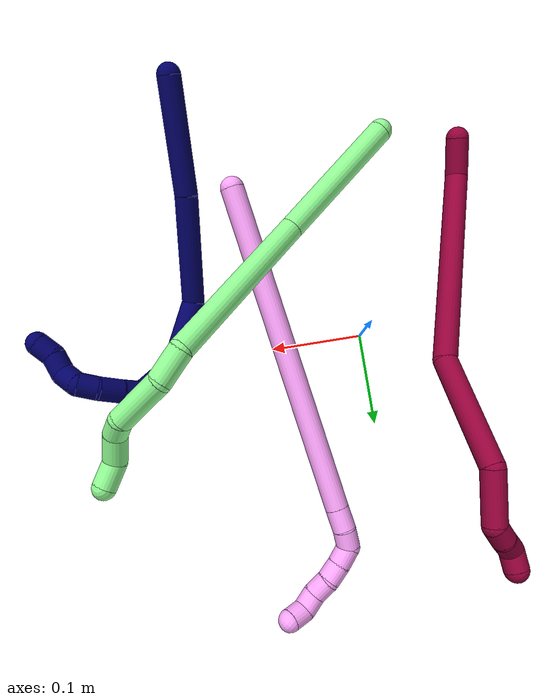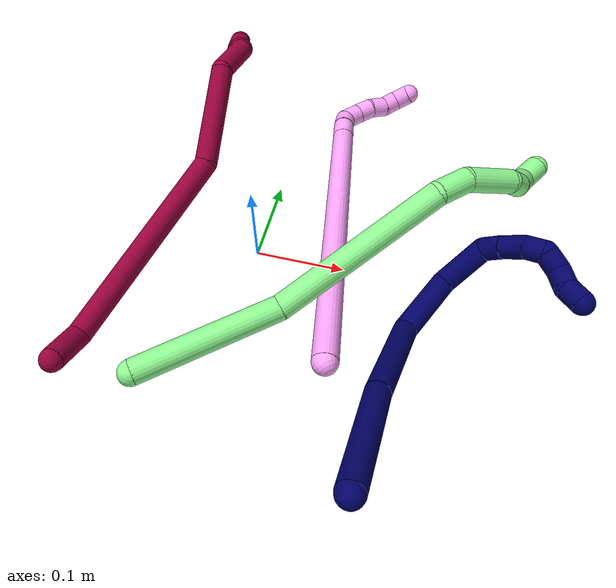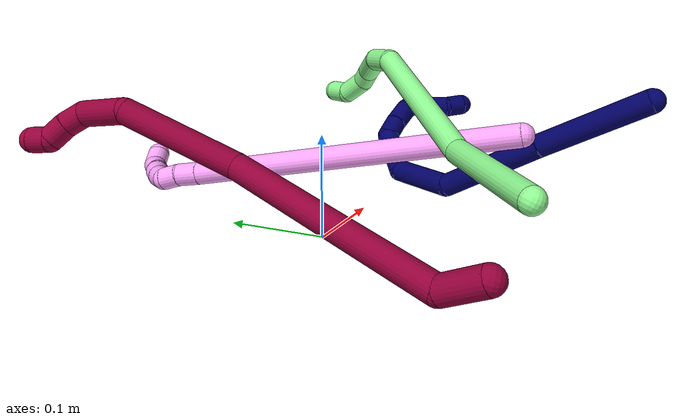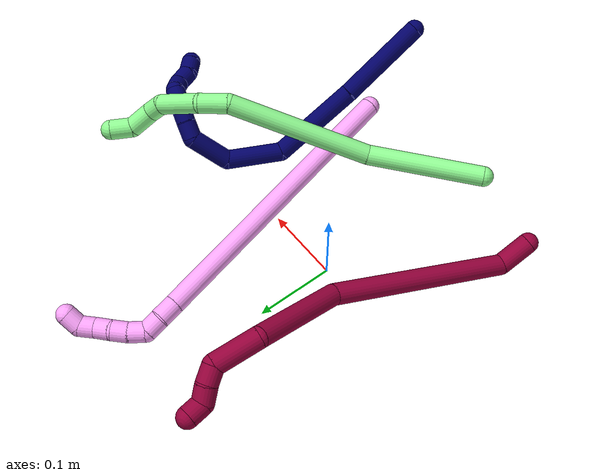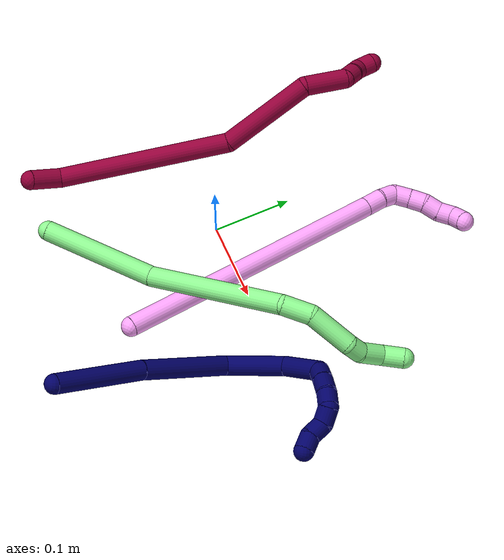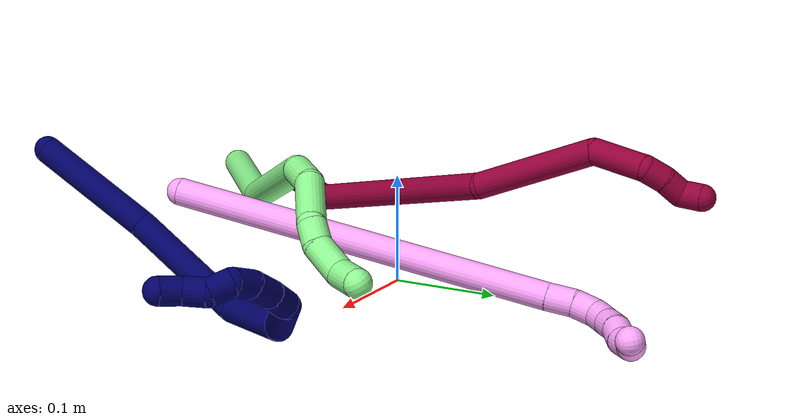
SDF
<sdf version="1.7">
 <world name="default">
  <model name="4">
   <static>0</static>
   <link name="4">
    <collision name="collision-cylinder-e_1_1_4">
     <pose>-0.055426 0.083346 0.145244 -0.520955 -0.319634 0.085873</pose>
     <geometry><cylinder><radius>0.0125</radius><length>0.352785</length></cylinder></geometry>
     <surface>
      <friction><ode><mu>1.16</mu><mu2>1.16</mu2><slip1>0</slip1><slip2>0</slip2></ode></friction>
      <contact><ode><kp>1e+06</kp><kd>1</kd><max_vel>0</max_vel><min_depth>0.001</min_depth></ode></contact>
     </surface>
    </collision>
    <visual name="visual-cylinder-e_1_1_4">
     <pose>-0.055426 0.083346 0.145244 -0.520955 -0.319634 0.085873</pose>
     <geometry><cylinder><radius>0.0125</radius><length>0.352785</length></cylinder></geometry>
     <material><ambient>1 0.65098 0.996078 1</ambient></material>
    </visual>
    <collision name="collision-cylinder-e_2_4_5">
     <pose>-0.114283 0.172368 0.300697 -0.507495 -0.285699 0.074566</pose>
     <geometry><cylinder><radius>0.0125</radius><length>0.024349</length></cylinder></geometry>
     <surface>
      <friction><ode><mu>1.16</mu><mu2>1.16</mu2><slip1>0</slip1><slip2>0</slip2></ode></friction>
      <contact><ode><kp>1e+06</kp><kd>1</kd><max_vel>0</max_vel><min_depth>0.001</min_depth></ode></contact>
     </surface>
    </collision>
    <visual name="visual-cylinder-e_2_4_5">
     <pose>-0.114283 0.172368 0.300697 -0.507495 -0.285699 0.074566</pose>
     <geometry><cylinder><radius>0.0125</radius><length>0.024349</length></cylinder></geometry>
     <material><ambient>1 0.65098 0.996078 1</ambient></material>
    </visual>
    <collision name="collision-cylinder-e_3_5_6">
     <pose>-0.122227 0.183393 0.318552 -0.610331 -0.45049 0.144106</pose>
     <geometry><cylinder><radius>0.0125</radius><length>0.02073</length></cylinder></geometry>
     <surface>
      <friction><ode><mu>1.16</mu><mu2>1.16</mu2><slip1>0</slip1><slip2>0</slip2></ode></friction>
      <contact><ode><kp>1e+06</kp><kd>1</kd><max_vel>0</max_vel><min_depth>0.001</min_depth></ode></contact>
     </surface>
    </collision>
    <visual name="visual-cylinder-e_3_5_6">
     <pose>-0.122227 0.183393 0.318552 -0.610331 -0.45049 0.144106</pose>
     <geometry><cylinder><radius>0.0125</radius><length>0.02073</length></cylinder></geometry>
     <material><ambient>1 0.65098 0.996078 1</ambient></material>
    </visual>
    <collision name="collision-cylinder-e_4_6_7">
     <pose>-0.128233 0.199002 0.328495 -1.35065 -0.141028 0.113024</pose>
     <geometry><cylinder><radius>0.0125</radius><length>0.021241</length></cylinder></geometry>
     <surface>
      <friction><ode><mu>1.16</mu><mu2>1.16</mu2><slip1>0</slip1><slip2>0</slip2></ode></friction>
      <contact><ode><kp>1e+06</kp><kd>1</kd><max_vel>0</max_vel><min_depth>0.001</min_depth></ode></contact>
     </surface>
    </collision>
    <visual name="visual-cylinder-e_4_6_7">
     <pose>-0.128233 0.199002 0.328495 -1.35065 -0.141028 0.113024</pose>
     <geometry><cylinder><radius>0.0125</radius><length>0.021241</length></cylinder></geometry>
     <material><ambient>1 0.65098 0.996078 1</ambient></material>
    </visual>
    <collision name="collision-cylinder-e_5_7_8">
     <pose>-0.129752 0.21929 0.332004 -1.45047 -0.002544 0.002255</pose>
     <geometry><cylinder><radius>0.0125</radius><length>0.020198</length></cylinder></geometry>
     <surface>
      <friction><ode><mu>1.16</mu><mu2>1.16</mu2><slip1>0</slip1><slip2>0</slip2></ode></friction>
      <contact><ode><kp>1e+06</kp><kd>1</kd><max_vel>0</max_vel><min_depth>0.001</min_depth></ode></contact>
     </surface>
    </collision>
    <visual name="visual-cylinder-e_5_7_8">
     <pose>-0.129752 0.21929 0.332004 -1.45047 -0.002544 0.002255</pose>
     <geometry><cylinder><radius>0.0125</radius><length>0.020198</length></cylinder></geometry>
     <material><ambient>1 0.65098 0.996078 1</ambient></material>
    </visual>
    <collision name="collision-cylinder-e_6_8_9">
     <pose>-0.131957 0.239368 0.332504 -1.64154 -0.212978 0.228474</pose>
     <geometry><cylinder><radius>0.0125</radius><length>0.02062</length></cylinder></geometry>
     <surface>
      <friction><ode><mu>1.16</mu><mu2>1.16</mu2><slip1>0</slip1><slip2>0</slip2></ode></friction>
      <contact><ode><kp>1e+06</kp><kd>1</kd><max_vel>0</max_vel><min_depth>0.001</min_depth></ode></contact>
     </surface>
    </collision>
    <visual name="visual-cylinder-e_6_8_9">
     <pose>-0.131957 0.239368 0.332504 -1.64154 -0.212978 0.228474</pose>
     <geometry><cylinder><radius>0.0125</radius><length>0.02062</length></cylinder></geometry>
     <material><ambient>1 0.65098 0.996078 1</ambient></material>
    </visual>
    <collision name="collision-cylinder-e_7_9_10">
     <pose>-0.133992 0.259345 0.333253 -1.4246 0.014391 -0.012428</pose>
     <geometry><cylinder><radius>0.0125</radius><length>0.020067</length></cylinder></geometry>
     <surface>
      <friction><ode><mu>1.16</mu><mu2>1.16</mu2><slip1>0</slip1><slip2>0</slip2></ode></friction>
      <contact><ode><kp>1e+06</kp><kd>1</kd><max_vel>0</max_vel><min_depth>0.001</min_depth></ode></contact>
     </surface>
    </collision>
    <visual name="visual-cylinder-e_7_9_10">
     <pose>-0.133992 0.259345 0.333253 -1.4246 0.014391 -0.012428</pose>
     <geometry><cylinder><radius>0.0125</radius><length>0.020067</length></cylinder></geometry>
     <material><ambient>1 0.65098 0.996078 1</ambient></material>
    </visual>
    <collision name="collision-cylinder-e_8_10_2">
     <pose>-0.128511 0.277497 0.332729 -1.80757 0.562591 -0.703433</pose>
     <geometry><cylinder><radius>0.0125</radius><length>0.020008</length></cylinder></geometry>
     <surface>
      <friction><ode><mu>1.16</mu><mu2>1.16</mu2><slip1>0</slip1><slip2>0</slip2></ode></friction>
      <contact><ode><kp>1e+06</kp><kd>1</kd><max_vel>0</max_vel><min_depth>0.001</min_depth></ode></contact>
     </surface>
    </collision>
    <visual name="visual-cylinder-e_8_10_2">
     <pose>-0.128511 0.277497 0.332729 -1.80757 0.562591 -0.703433</pose>
     <geometry><cylinder><radius>0.0125</radius><length>0.020008</length></cylinder></geometry>
     <material><ambient>1 0.65098 0.996078 1</ambient></material>
    </visual>
    <collision name="collision-sphere-2">
     <pose>-0.123175 0.285723 0.330744 0 -0 0</pose>
     <geometry><sphere><radius>0.0125</radius></sphere></geometry>
     <surface>
      <friction><ode><mu>1.16</mu><mu2>1.16</mu2><slip1>0</slip1><slip2>0</slip2></ode></friction>
      <contact><ode><kp>1e+06</kp><kd>1</kd><max_vel>0</max_vel><min_depth>0.001</min_depth></ode></contact>
     </surface>
    </collision>
    <visual name="visual-sphere-2">
     <pose>-0.123175 0.285723 0.330744 0 -0 0</pose>
     <geometry><sphere><radius>0.0125</radius></sphere></geometry>
     <material><ambient>1 0.65098 0.996078 1</ambient></material>
    </visual>
    <collision name="collision-sphere-10">
     <pose>-0.133847 0.269271 0.334714 0 -0 0</pose>
     <geometry><sphere><radius>0.0125</radius></sphere></geometry>
     <surface>
      <friction><ode><mu>1.16</mu><mu2>1.16</mu2><slip1>0</slip1><slip2>0</slip2></ode></friction>
      <contact><ode><kp>1e+06</kp><kd>1</kd><max_vel>0</max_vel><min_depth>0.001</min_depth></ode></contact>
     </surface>
    </collision>
    <visual name="visual-sphere-10">
     <pose>-0.133847 0.269271 0.334714 0 -0 0</pose>
     <geometry><sphere><radius>0.0125</radius></sphere></geometry>
     <material><ambient>1 0.65098 0.996078 1</ambient></material>
    </visual>
    <collision name="collision-sphere-9">
     <pose>-0.134136 0.24942 0.331791 0 -0 0</pose>
     <geometry><sphere><radius>0.0125</radius></sphere></geometry>
     <surface>
      <friction><ode><mu>1.16</mu><mu2>1.16</mu2><slip1>0</slip1><slip2>0</slip2></ode></friction>
      <contact><ode><kp>1e+06</kp><kd>1</kd><max_vel>0</max_vel><min_depth>0.001</min_depth></ode></contact>
     </surface>
    </collision>
    <visual name="visual-sphere-9">
     <pose>-0.134136 0.24942 0.331791 0 -0 0</pose>
     <geometry><sphere><radius>0.0125</radius></sphere></geometry>
     <material><ambient>1 0.65098 0.996078 1</ambient></material>
    </visual>
    <collision name="collision-sphere-4">
     <pose>-0.110852 0.166691 0.290488 0 -0 0</pose>
     <geometry><sphere><radius>0.0125</radius></sphere></geometry>
     <surface>
      <friction><ode><mu>1.16</mu><mu2>1.16</mu2><slip1>0</slip1><slip2>0</slip2></ode></friction>
      <contact><ode><kp>1e+06</kp><kd>1</kd><max_vel>0</max_vel><min_depth>0.001</min_depth></ode></contact>
     </surface>
    </collision>
    <visual name="visual-sphere-4">
     <pose>-0.110852 0.166691 0.290488 0 -0 0</pose>
     <geometry><sphere><radius>0.0125</radius></sphere></geometry>
     <material><ambient>1 0.65098 0.996078 1</ambient></material>
    </visual>
    <collision name="collision-sphere-1">
     <geometry><sphere><radius>0.0125</radius></sphere></geometry>
     <surface>
      <friction><ode><mu>1.16</mu><mu2>1.16</mu2><slip1>0</slip1><slip2>0</slip2></ode></friction>
      <contact><ode><kp>1e+06</kp><kd>1</kd><max_vel>0</max_vel><min_depth>0.001</min_depth></ode></contact>
     </surface>
    </collision>
    <visual name="visual-sphere-1">
     <geometry><sphere><radius>0.0125</radius></sphere></geometry>
     <material><ambient>1 0.65098 0.996078 1</ambient></material>
    </visual>
    <collision name="collision-sphere-8">
     <pose>-0.129778 0.229316 0.333216 0 -0 0</pose>
     <geometry><sphere><radius>0.0125</radius></sphere></geometry>
     <surface>
      <friction><ode><mu>1.16</mu><mu2>1.16</mu2><slip1>0</slip1><slip2>0</slip2></ode></friction>
      <contact><ode><kp>1e+06</kp><kd>1</kd><max_vel>0</max_vel><min_depth>0.001</min_depth></ode></contact>
     </surface>
    </collision>
    <visual name="visual-sphere-8">
     <pose>-0.129778 0.229316 0.333216 0 -0 0</pose>
     <geometry><sphere><radius>0.0125</radius></sphere></geometry>
     <material><ambient>1 0.65098 0.996078 1</ambient></material>
    </visual>
    <collision name="collision-sphere-5">
     <pose>-0.117714 0.178045 0.310906 0 -0 0</pose>
     <geometry><sphere><radius>0.0125</radius></sphere></geometry>
     <surface>
      <friction><ode><mu>1.16</mu><mu2>1.16</mu2><slip1>0</slip1><slip2>0</slip2></ode></friction>
      <contact><ode><kp>1e+06</kp><kd>1</kd><max_vel>0</max_vel><min_depth>0.001</min_depth></ode></contact>
     </surface>
    </collision>
    <visual name="visual-sphere-5">
     <pose>-0.117714 0.178045 0.310906 0 -0 0</pose>
     <geometry><sphere><radius>0.0125</radius></sphere></geometry>
     <material><ambient>1 0.65098 0.996078 1</ambient></material>
    </visual>
    <collision name="collision-sphere-6">
     <pose>-0.12674 0.188741 0.326199 0 -0 0</pose>
     <geometry><sphere><radius>0.0125</radius></sphere></geometry>
     <surface>
      <friction><ode><mu>1.16</mu><mu2>1.16</mu2><slip1>0</slip1><slip2>0</slip2></ode></friction>
      <contact><ode><kp>1e+06</kp><kd>1</kd><max_vel>0</max_vel><min_depth>0.001</min_depth></ode></contact>
     </surface>
    </collision>
    <visual name="visual-sphere-6">
     <pose>-0.12674 0.188741 0.326199 0 -0 0</pose>
     <geometry><sphere><radius>0.0125</radius></sphere></geometry>
     <material><ambient>1 0.65098 0.996078 1</ambient></material>
    </visual>
    <collision name="collision-sphere-7">
     <pose>-0.129726 0.209264 0.330791 0 -0 0</pose>
     <geometry><sphere><radius>0.0125</radius></sphere></geometry>
     <surface>
      <friction><ode><mu>1.16</mu><mu2>1.16</mu2><slip1>0</slip1><slip2>0</slip2></ode></friction>
      <contact><ode><kp>1e+06</kp><kd>1</kd><max_vel>0</max_vel><min_depth>0.001</min_depth></ode></contact>
     </surface>
    </collision>
    <visual name="visual-sphere-7">
     <pose>-0.129726 0.209264 0.330791 0 -0 0</pose>
     <geometry><sphere><radius>0.0125</radius></sphere></geometry>
     <material><ambient>1 0.65098 0.996078 1</ambient></material>
    </visual>
    <inertial>
     <pose>-0.076391 0.123501 0.1981 0 -0 0</pose>
     <mass>0.5</mass>
     <inertia>
      <ixx>0.003774</ixx>
      <ixy>0</ixy>
      <ixz>0</ixz>
      <iyy>0.003549</iyy>
      <iyz>0</iyz>
      <izz>-0.000563</izz>
     </inertia>
    </inertial>
   </link>
   <pose>0.117003 -0.160402 0.091015 0.119916 -1.42092 -1.01801</pose>
  </model>
  <model name="7">
   <static>0</static>
   <link name="7">
    <collision name="collision-cylinder-e_1_1_4">
     <pose>0.001109 0.00909 -0.059015 -2.98876 0.018566 -0.24132</pose>
     <geometry><cylinder><radius>0.0125</radius><length>0.119443</length></cylinder></geometry>
     <surface>
      <friction><ode><mu>1.16</mu><mu2>1.16</mu2><slip1>0</slip1><slip2>0</slip2></ode></friction>
      <contact><ode><kp>1e+06</kp><kd>1</kd><max_vel>0</max_vel><min_depth>0.001</min_depth></ode></contact>
     </surface>
    </collision>
    <visual name="visual-cylinder-e_1_1_4">
     <pose>0.001109 0.00909 -0.059015 -2.98876 0.018566 -0.24132</pose>
     <geometry><cylinder><radius>0.0125</radius><length>0.119443</length></cylinder></geometry>
     <material><ambient>0.003922 0 0.403922 1</ambient></material>
    </visual>
    <collision name="collision-cylinder-e_2_4_5">
     <pose>0.001676 0.022255 -0.177488 -3.07316 -0.009082 0.263808</pose>
     <geometry><cylinder><radius>0.0125</radius><length>0.1192</length></cylinder></geometry>
     <surface>
      <friction><ode><mu>1.16</mu><mu2>1.16</mu2><slip1>0</slip1><slip2>0</slip2></ode></friction>
      <contact><ode><kp>1e+06</kp><kd>1</kd><max_vel>0</max_vel><min_depth>0.001</min_depth></ode></contact>
     </surface>
    </collision>
    <visual name="visual-cylinder-e_2_4_5">
     <pose>0.001676 0.022255 -0.177488 -3.07316 -0.009082 0.263808</pose>
     <geometry><cylinder><radius>0.0125</radius><length>0.1192</length></cylinder></geometry>
     <material><ambient>0.003922 0 0.403922 1</ambient></material>
    </visual>
    <collision name="collision-cylinder-e_3_5_6">
     <pose>0.019636 0.018147 -0.267785 2.88222 0.525473 2.23859</pose>
     <geometry><cylinder><radius>0.0125</radius><length>0.073764</length></cylinder></geometry>
     <surface>
      <friction><ode><mu>1.16</mu><mu2>1.16</mu2><slip1>0</slip1><slip2>0</slip2></ode></friction>
      <contact><ode><kp>1e+06</kp><kd>1</kd><max_vel>0</max_vel><min_depth>0.001</min_depth></ode></contact>
     </surface>
    </collision>
    <visual name="visual-cylinder-e_3_5_6">
     <pose>0.019636 0.018147 -0.267785 2.88222 0.525473 2.23859</pose>
     <geometry><cylinder><radius>0.0125</radius><length>0.073764</length></cylinder></geometry>
     <material><ambient>0.003922 0 0.403922 1</ambient></material>
    </visual>
    <collision name="collision-cylinder-e_4_6_7">
     <pose>0.061222 -0.003334 -0.306117 2.08388 0.986601 1.48752</pose>
     <geometry><cylinder><radius>0.0125</radius><length>0.05535</length></cylinder></geometry>
     <surface>
      <friction><ode><mu>1.16</mu><mu2>1.16</mu2><slip1>0</slip1><slip2>0</slip2></ode></friction>
      <contact><ode><kp>1e+06</kp><kd>1</kd><max_vel>0</max_vel><min_depth>0.001</min_depth></ode></contact>
     </surface>
    </collision>
    <visual name="visual-cylinder-e_4_6_7">
     <pose>0.061222 -0.003334 -0.306117 2.08388 0.986601 1.48752</pose>
     <geometry><cylinder><radius>0.0125</radius><length>0.05535</length></cylinder></geometry>
     <material><ambient>0.003922 0 0.403922 1</ambient></material>
    </visual>
    <collision name="collision-cylinder-e_5_7_8">
     <pose>0.090325 -0.025536 -0.310492 1.23404 0.56784 0.408255</pose>
     <geometry><cylinder><radius>0.0125</radius><length>0.022379</length></cylinder></geometry>
     <surface>
      <friction><ode><mu>1.16</mu><mu2>1.16</mu2><slip1>0</slip1><slip2>0</slip2></ode></friction>
      <contact><ode><kp>1e+06</kp><kd>1</kd><max_vel>0</max_vel><min_depth>0.001</min_depth></ode></contact>
     </surface>
    </collision>
    <visual name="visual-cylinder-e_5_7_8">
     <pose>0.090325 -0.025536 -0.310492 1.23404 0.56784 0.408255</pose>
     <geometry><cylinder><radius>0.0125</radius><length>0.022379</length></cylinder></geometry>
     <material><ambient>0.003922 0 0.403922 1</ambient></material>
    </visual>
    <collision name="collision-cylinder-e_6_8_9">
     <pose>0.102147 -0.045323 -0.303742 1.24861 0.468337 0.340385</pose>
     <geometry><cylinder><radius>0.0125</radius><length>0.025718</length></cylinder></geometry>
     <surface>
      <friction><ode><mu>1.16</mu><mu2>1.16</mu2><slip1>0</slip1><slip2>0</slip2></ode></friction>
      <contact><ode><kp>1e+06</kp><kd>1</kd><max_vel>0</max_vel><min_depth>0.001</min_depth></ode></contact>
     </surface>
    </collision>
    <visual name="visual-cylinder-e_6_8_9">
     <pose>0.102147 -0.045323 -0.303742 1.24861 0.468337 0.340385</pose>
     <geometry><cylinder><radius>0.0125</radius><length>0.025718</length></cylinder></geometry>
     <material><ambient>0.003922 0 0.403922 1</ambient></material>
    </visual>
    <collision name="collision-cylinder-e_7_9_10">
     <pose>0.109962 -0.066204 -0.297468 1.31256 0.192033 0.148081</pose>
     <geometry><cylinder><radius>0.0125</radius><length>0.021066</length></cylinder></geometry>
     <surface>
      <friction><ode><mu>1.16</mu><mu2>1.16</mu2><slip1>0</slip1><slip2>0</slip2></ode></friction>
      <contact><ode><kp>1e+06</kp><kd>1</kd><max_vel>0</max_vel><min_depth>0.001</min_depth></ode></contact>
     </surface>
    </collision>
    <visual name="visual-cylinder-e_7_9_10">
     <pose>0.109962 -0.066204 -0.297468 1.31256 0.192033 0.148081</pose>
     <geometry><cylinder><radius>0.0125</radius><length>0.021066</length></cylinder></geometry>
     <material><ambient>0.003922 0 0.403922 1</ambient></material>
    </visual>
    <collision name="collision-cylinder-e_8_10_11">
     <pose>0.106322 -0.084722 -0.291964 1.24657 -0.561132 -0.408535</pose>
     <geometry><cylinder><radius>0.0125</radius><length>0.021237</length></cylinder></geometry>
     <surface>
      <friction><ode><mu>1.16</mu><mu2>1.16</mu2><slip1>0</slip1><slip2>0</slip2></ode></friction>
      <contact><ode><kp>1e+06</kp><kd>1</kd><max_vel>0</max_vel><min_depth>0.001</min_depth></ode></contact>
     </surface>
    </collision>
    <visual name="visual-cylinder-e_8_10_11">
     <pose>0.106322 -0.084722 -0.291964 1.24657 -0.561132 -0.408535</pose>
     <geometry><cylinder><radius>0.0125</radius><length>0.021237</length></cylinder></geometry>
     <material><ambient>0.003922 0 0.403922 1</ambient></material>
    </visual>
    <collision name="collision-cylinder-e_9_11_12">
     <pose>0.0966 -0.099039 -0.281124 0.628424 -0.391676 -0.12876</pose>
     <geometry><cylinder><radius>0.0125</radius><length>0.021333</length></cylinder></geometry>
     <surface>
      <friction><ode><mu>1.16</mu><mu2>1.16</mu2><slip1>0</slip1><slip2>0</slip2></ode></friction>
      <contact><ode><kp>1e+06</kp><kd>1</kd><max_vel>0</max_vel><min_depth>0.001</min_depth></ode></contact>
     </surface>
    </collision>
    <visual name="visual-cylinder-e_9_11_12">
     <pose>0.0966 -0.099039 -0.281124 0.628424 -0.391676 -0.12876</pose>
     <geometry><cylinder><radius>0.0125</radius><length>0.021333</length></cylinder></geometry>
     <material><ambient>0.003922 0 0.403922 1</ambient></material>
    </visual>
    <collision name="collision-cylinder-e_10_12_2">
     <pose>0.09045 -0.113384 -0.26788 1.01843 -0.20403 -0.114189</pose>
     <geometry><cylinder><radius>0.0125</radius><length>0.02051</length></cylinder></geometry>
     <surface>
      <friction><ode><mu>1.16</mu><mu2>1.16</mu2><slip1>0</slip1><slip2>0</slip2></ode></friction>
      <contact><ode><kp>1e+06</kp><kd>1</kd><max_vel>0</max_vel><min_depth>0.001</min_depth></ode></contact>
     </surface>
    </collision>
    <visual name="visual-cylinder-e_10_12_2">
     <pose>0.09045 -0.113384 -0.26788 1.01843 -0.20403 -0.114189</pose>
     <geometry><cylinder><radius>0.0125</radius><length>0.02051</length></cylinder></geometry>
     <material><ambient>0.003922 0 0.403922 1</ambient></material>
    </visual>
    <collision name="collision-sphere-2">
     <pose>0.088372 -0.121933 -0.26261 0 -0 0</pose>
     <geometry><sphere><radius>0.0125</radius></sphere></geometry>
     <surface>
      <friction><ode><mu>1.16</mu><mu2>1.16</mu2><slip1>0</slip1><slip2>0</slip2></ode></friction>
      <contact><ode><kp>1e+06</kp><kd>1</kd><max_vel>0</max_vel><min_depth>0.001</min_depth></ode></contact>
     </surface>
    </collision>
    <visual name="visual-sphere-2">
     <pose>0.088372 -0.121933 -0.26261 0 -0 0</pose>
     <geometry><sphere><radius>0.0125</radius></sphere></geometry>
     <material><ambient>0.003922 0 0.403922 1</ambient></material>
    </visual>
    <collision name="collision-sphere-12">
     <pose>0.092528 -0.104835 -0.273149 0 -0 0</pose>
     <geometry><sphere><radius>0.0125</radius></sphere></geometry>
     <surface>
      <friction><ode><mu>1.16</mu><mu2>1.16</mu2><slip1>0</slip1><slip2>0</slip2></ode></friction>
      <contact><ode><kp>1e+06</kp><kd>1</kd><max_vel>0</max_vel><min_depth>0.001</min_depth></ode></contact>
     </surface>
    </collision>
    <visual name="visual-sphere-12">
     <pose>0.092528 -0.104835 -0.273149 0 -0 0</pose>
     <geometry><sphere><radius>0.0125</radius></sphere></geometry>
     <material><ambient>0.003922 0 0.403922 1</ambient></material>
    </visual>
    <collision name="collision-sphere-11">
     <pose>0.100671 -0.093244 -0.2891 0 -0 0</pose>
     <geometry><sphere><radius>0.0125</radius></sphere></geometry>
     <surface>
      <friction><ode><mu>1.16</mu><mu2>1.16</mu2><slip1>0</slip1><slip2>0</slip2></ode></friction>
      <contact><ode><kp>1e+06</kp><kd>1</kd><max_vel>0</max_vel><min_depth>0.001</min_depth></ode></contact>
     </surface>
    </collision>
    <visual name="visual-sphere-11">
     <pose>0.100671 -0.093244 -0.2891 0 -0 0</pose>
     <geometry><sphere><radius>0.0125</radius></sphere></geometry>
     <material><ambient>0.003922 0 0.403922 1</ambient></material>
    </visual>
    <collision name="collision-sphere-10">
     <pose>0.111972 -0.0762 -0.294828 0 -0 0</pose>
     <geometry><sphere><radius>0.0125</radius></sphere></geometry>
     <surface>
      <friction><ode><mu>1.16</mu><mu2>1.16</mu2><slip1>0</slip1><slip2>0</slip2></ode></friction>
      <contact><ode><kp>1e+06</kp><kd>1</kd><max_vel>0</max_vel><min_depth>0.001</min_depth></ode></contact>
     </surface>
    </collision>
    <visual name="visual-sphere-10">
     <pose>0.111972 -0.0762 -0.294828 0 -0 0</pose>
     <geometry><sphere><radius>0.0125</radius></sphere></geometry>
     <material><ambient>0.003922 0 0.403922 1</ambient></material>
    </visual>
    <collision name="collision-sphere-9">
     <pose>0.107952 -0.056207 -0.300109 0 -0 0</pose>
     <geometry><sphere><radius>0.0125</radius></sphere></geometry>
     <surface>
      <friction><ode><mu>1.16</mu><mu2>1.16</mu2><slip1>0</slip1><slip2>0</slip2></ode></friction>
      <contact><ode><kp>1e+06</kp><kd>1</kd><max_vel>0</max_vel><min_depth>0.001</min_depth></ode></contact>
     </surface>
    </collision>
    <visual name="visual-sphere-9">
     <pose>0.107952 -0.056207 -0.300109 0 -0 0</pose>
     <geometry><sphere><radius>0.0125</radius></sphere></geometry>
     <material><ambient>0.003922 0 0.403922 1</ambient></material>
    </visual>
    <collision name="collision-sphere-4">
     <pose>0.002217 0.018181 -0.118031 0 -0 0</pose>
     <geometry><sphere><radius>0.0125</radius></sphere></geometry>
     <surface>
      <friction><ode><mu>1.16</mu><mu2>1.16</mu2><slip1>0</slip1><slip2>0</slip2></ode></friction>
      <contact><ode><kp>1e+06</kp><kd>1</kd><max_vel>0</max_vel><min_depth>0.001</min_depth></ode></contact>
     </surface>
    </collision>
    <visual name="visual-sphere-4">
     <pose>0.002217 0.018181 -0.118031 0 -0 0</pose>
     <geometry><sphere><radius>0.0125</radius></sphere></geometry>
     <material><ambient>0.003922 0 0.403922 1</ambient></material>
    </visual>
    <collision name="collision-sphere-1">
     <geometry><sphere><radius>0.0125</radius></sphere></geometry>
     <surface>
      <friction><ode><mu>1.16</mu><mu2>1.16</mu2><slip1>0</slip1><slip2>0</slip2></ode></friction>
      <contact><ode><kp>1e+06</kp><kd>1</kd><max_vel>0</max_vel><min_depth>0.001</min_depth></ode></contact>
     </surface>
    </collision>
    <visual name="visual-sphere-1">
     <geometry><sphere><radius>0.0125</radius></sphere></geometry>
     <material><ambient>0.003922 0 0.403922 1</ambient></material>
    </visual>
    <collision name="collision-sphere-8">
     <pose>0.096343 -0.034439 -0.307375 0 -0 0</pose>
     <geometry><sphere><radius>0.0125</radius></sphere></geometry>
     <surface>
      <friction><ode><mu>1.16</mu><mu2>1.16</mu2><slip1>0</slip1><slip2>0</slip2></ode></friction>
      <contact><ode><kp>1e+06</kp><kd>1</kd><max_vel>0</max_vel><min_depth>0.001</min_depth></ode></contact>
     </surface>
    </collision>
    <visual name="visual-sphere-8">
     <pose>0.096343 -0.034439 -0.307375 0 -0 0</pose>
     <geometry><sphere><radius>0.0125</radius></sphere></geometry>
     <material><ambient>0.003922 0 0.403922 1</ambient></material>
    </visual>
    <collision name="collision-sphere-5">
     <pose>0.001135 0.02633 -0.236946 0 -0 0</pose>
     <geometry><sphere><radius>0.0125</radius></sphere></geometry>
     <surface>
      <friction><ode><mu>1.16</mu><mu2>1.16</mu2><slip1>0</slip1><slip2>0</slip2></ode></friction>
      <contact><ode><kp>1e+06</kp><kd>1</kd><max_vel>0</max_vel><min_depth>0.001</min_depth></ode></contact>
     </surface>
    </collision>
    <visual name="visual-sphere-5">
     <pose>0.001135 0.02633 -0.236946 0 -0 0</pose>
     <geometry><sphere><radius>0.0125</radius></sphere></geometry>
     <material><ambient>0.003922 0 0.403922 1</ambient></material>
    </visual>
    <collision name="collision-sphere-6">
     <pose>0.038137 0.009964 -0.298624 0 -0 0</pose>
     <geometry><sphere><radius>0.0125</radius></sphere></geometry>
     <surface>
      <friction><ode><mu>1.16</mu><mu2>1.16</mu2><slip1>0</slip1><slip2>0</slip2></ode></friction>
      <contact><ode><kp>1e+06</kp><kd>1</kd><max_vel>0</max_vel><min_depth>0.001</min_depth></ode></contact>
     </surface>
    </collision>
    <visual name="visual-sphere-6">
     <pose>0.038137 0.009964 -0.298624 0 -0 0</pose>
     <geometry><sphere><radius>0.0125</radius></sphere></geometry>
     <material><ambient>0.003922 0 0.403922 1</ambient></material>
    </visual>
    <collision name="collision-sphere-7">
     <pose>0.084307 -0.016632 -0.313609 0 -0 0</pose>
     <geometry><sphere><radius>0.0125</radius></sphere></geometry>
     <surface>
      <friction><ode><mu>1.16</mu><mu2>1.16</mu2><slip1>0</slip1><slip2>0</slip2></ode></friction>
      <contact><ode><kp>1e+06</kp><kd>1</kd><max_vel>0</max_vel><min_depth>0.001</min_depth></ode></contact>
     </surface>
    </collision>
    <visual name="visual-sphere-7">
     <pose>0.084307 -0.016632 -0.313609 0 -0 0</pose>
     <geometry><sphere><radius>0.0125</radius></sphere></geometry>
     <material><ambient>0.003922 0 0.403922 1</ambient></material>
    </visual>
    <inertial>
     <pose>0.036616 -0.008953 -0.207241 0 -0 0</pose>
     <mass>0.5</mass>
     <inertia>
      <ixx>0.000318</ixx>
      <ixy>0</ixy>
      <ixz>0</ixz>
      <iyy>-0.000211</iyy>
      <iyz>0</iyz>
      <izz>-6.2e-05</izz>
     </inertia>
    </inertial>
   </link>
   <pose>0.162427 -0.273858 0.126068 0.011507 -1.06079 1.34683</pose>
  </model>
  <model name="8">
   <static>0</static>
   <link name="8">
    <collision name="collision-cylinder-e_1_1_4">
     <pose>0.003906 0.015133 -0.013807 -2.31041 0.188429 -0.421889</pose>
     <geometry><cylinder><radius>0.0125</radius><length>0.041709</length></cylinder></geometry>
     <surface>
      <friction><ode><mu>1.16</mu><mu2>1.16</mu2><slip1>0</slip1><slip2>0</slip2></ode></friction>
      <contact><ode><kp>1e+06</kp><kd>1</kd><max_vel>0</max_vel><min_depth>0.001</min_depth></ode></contact>
     </surface>
    </collision>
    <visual name="visual-cylinder-e_1_1_4">
     <pose>0.003906 0.015133 -0.013807 -2.31041 0.188429 -0.421889</pose>
     <geometry><cylinder><radius>0.0125</radius><length>0.041709</length></cylinder></geometry>
     <material><ambient>0.584314 0 0.227451 1</ambient></material>
    </visual>
    <collision name="collision-cylinder-e_2_4_5">
     <pose>-0.039278 0.084743 -0.113228 -2.5749 -0.434482 1.29724</pose>
     <geometry><cylinder><radius>0.0125</radius><length>0.223741</length></cylinder></geometry>
     <surface>
      <friction><ode><mu>1.16</mu><mu2>1.16</mu2><slip1>0</slip1><slip2>0</slip2></ode></friction>
      <contact><ode><kp>1e+06</kp><kd>1</kd><max_vel>0</max_vel><min_depth>0.001</min_depth></ode></contact>
     </surface>
    </collision>
    <visual name="visual-cylinder-e_2_4_5">
     <pose>-0.039278 0.084743 -0.113228 -2.5749 -0.434482 1.29724</pose>
     <geometry><cylinder><radius>0.0125</radius><length>0.223741</length></cylinder></geometry>
     <material><ambient>0.584314 0 0.227451 1</ambient></material>
    </visual>
    <collision name="collision-cylinder-e_3_5_6">
     <pose>-0.101558 0.147633 -0.255593 -2.99444 -0.25881 2.11085</pose>
     <geometry><cylinder><radius>0.0125</radius><length>0.118697</length></cylinder></geometry>
     <surface>
      <friction><ode><mu>1.16</mu><mu2>1.16</mu2><slip1>0</slip1><slip2>0</slip2></ode></friction>
      <contact><ode><kp>1e+06</kp><kd>1</kd><max_vel>0</max_vel><min_depth>0.001</min_depth></ode></contact>
     </surface>
    </collision>
    <visual name="visual-cylinder-e_3_5_6">
     <pose>-0.101558 0.147633 -0.255593 -2.99444 -0.25881 2.11085</pose>
     <geometry><cylinder><radius>0.0125</radius><length>0.118697</length></cylinder></geometry>
     <material><ambient>0.584314 0 0.227451 1</ambient></material>
    </visual>
    <collision name="collision-cylinder-e_4_6_7">
     <pose>-0.117265 0.173109 -0.333654 -2.46638 -0.018964 0.054011</pose>
     <geometry><cylinder><radius>0.0125</radius><length>0.054609</length></cylinder></geometry>
     <surface>
      <friction><ode><mu>1.16</mu><mu2>1.16</mu2><slip1>0</slip1><slip2>0</slip2></ode></friction>
      <contact><ode><kp>1e+06</kp><kd>1</kd><max_vel>0</max_vel><min_depth>0.001</min_depth></ode></contact>
     </surface>
    </collision>
    <visual name="visual-cylinder-e_4_6_7">
     <pose>-0.117265 0.173109 -0.333654 -2.46638 -0.018964 0.054011</pose>
     <geometry><cylinder><radius>0.0125</radius><length>0.054609</length></cylinder></geometry>
     <material><ambient>0.584314 0 0.227451 1</ambient></material>
    </visual>
    <collision name="collision-cylinder-e_5_7_8">
     <pose>-0.111401 0.193959 -0.362086 -2.65299 0.669266 -1.89761</pose>
     <geometry><cylinder><radius>0.0125</radius><length>0.020571</length></cylinder></geometry>
     <surface>
      <friction><ode><mu>1.16</mu><mu2>1.16</mu2><slip1>0</slip1><slip2>0</slip2></ode></friction>
      <contact><ode><kp>1e+06</kp><kd>1</kd><max_vel>0</max_vel><min_depth>0.001</min_depth></ode></contact>
     </surface>
    </collision>
    <visual name="visual-cylinder-e_5_7_8">
     <pose>-0.111401 0.193959 -0.362086 -2.65299 0.669266 -1.89761</pose>
     <geometry><cylinder><radius>0.0125</radius><length>0.020571</length></cylinder></geometry>
     <material><ambient>0.584314 0 0.227451 1</ambient></material>
    </visual>
    <collision name="collision-cylinder-e_6_8_9">
     <pose>-0.097239 0.201629 -0.374735 -2.52908 0.855873 -1.92924</pose>
     <geometry><cylinder><radius>0.0125</radius><length>0.020608</length></cylinder></geometry>
     <surface>
      <friction><ode><mu>1.16</mu><mu2>1.16</mu2><slip1>0</slip1><slip2>0</slip2></ode></friction>
      <contact><ode><kp>1e+06</kp><kd>1</kd><max_vel>0</max_vel><min_depth>0.001</min_depth></ode></contact>
     </surface>
    </collision>
    <visual name="visual-cylinder-e_6_8_9">
     <pose>-0.097239 0.201629 -0.374735 -2.52908 0.855873 -1.92924</pose>
     <geometry><cylinder><radius>0.0125</radius><length>0.020608</length></cylinder></geometry>
     <material><ambient>0.584314 0 0.227451 1</ambient></material>
    </visual>
    <collision name="collision-cylinder-e_7_9_2">
     <pose>-0.088642 0.210036 -0.389181 -2.67223 0.081445 -0.337594</pose>
     <geometry><cylinder><radius>0.0125</radius><length>0.020067</length></cylinder></geometry>
     <surface>
      <friction><ode><mu>1.16</mu><mu2>1.16</mu2><slip1>0</slip1><slip2>0</slip2></ode></friction>
      <contact><ode><kp>1e+06</kp><kd>1</kd><max_vel>0</max_vel><min_depth>0.001</min_depth></ode></contact>
     </surface>
    </collision>
    <visual name="visual-cylinder-e_7_9_2">
     <pose>-0.088642 0.210036 -0.389181 -2.67223 0.081445 -0.337594</pose>
     <geometry><cylinder><radius>0.0125</radius><length>0.020067</length></cylinder></geometry>
     <material><ambient>0.584314 0 0.227451 1</ambient></material>
    </visual>
    <collision name="collision-sphere-2">
     <pose>-0.087826 0.214559 -0.398099 0 -0 0</pose>
     <geometry><sphere><radius>0.0125</radius></sphere></geometry>
     <surface>
      <friction><ode><mu>1.16</mu><mu2>1.16</mu2><slip1>0</slip1><slip2>0</slip2></ode></friction>
      <contact><ode><kp>1e+06</kp><kd>1</kd><max_vel>0</max_vel><min_depth>0.001</min_depth></ode></contact>
     </surface>
    </collision>
    <visual name="visual-sphere-2">
     <pose>-0.087826 0.214559 -0.398099 0 -0 0</pose>
     <geometry><sphere><radius>0.0125</radius></sphere></geometry>
     <material><ambient>0.584314 0 0.227451 1</ambient></material>
    </visual>
    <collision name="collision-sphere-9">
     <pose>-0.089459 0.205512 -0.380262 0 -0 0</pose>
     <geometry><sphere><radius>0.0125</radius></sphere></geometry>
     <surface>
      <friction><ode><mu>1.16</mu><mu2>1.16</mu2><slip1>0</slip1><slip2>0</slip2></ode></friction>
      <contact><ode><kp>1e+06</kp><kd>1</kd><max_vel>0</max_vel><min_depth>0.001</min_depth></ode></contact>
     </surface>
    </collision>
    <visual name="visual-sphere-9">
     <pose>-0.089459 0.205512 -0.380262 0 -0 0</pose>
     <geometry><sphere><radius>0.0125</radius></sphere></geometry>
     <material><ambient>0.584314 0 0.227451 1</ambient></material>
    </visual>
    <collision name="collision-sphere-4">
     <pose>0.007813 0.030266 -0.027614 0 -0 0</pose>
     <geometry><sphere><radius>0.0125</radius></sphere></geometry>
     <surface>
      <friction><ode><mu>1.16</mu><mu2>1.16</mu2><slip1>0</slip1><slip2>0</slip2></ode></friction>
      <contact><ode><kp>1e+06</kp><kd>1</kd><max_vel>0</max_vel><min_depth>0.001</min_depth></ode></contact>
     </surface>
    </collision>
    <visual name="visual-sphere-4">
     <pose>0.007813 0.030266 -0.027614 0 -0 0</pose>
     <geometry><sphere><radius>0.0125</radius></sphere></geometry>
     <material><ambient>0.584314 0 0.227451 1</ambient></material>
    </visual>
    <collision name="collision-sphere-1">
     <geometry><sphere><radius>0.0125</radius></sphere></geometry>
     <surface>
      <friction><ode><mu>1.16</mu><mu2>1.16</mu2><slip1>0</slip1><slip2>0</slip2></ode></friction>
      <contact><ode><kp>1e+06</kp><kd>1</kd><max_vel>0</max_vel><min_depth>0.001</min_depth></ode></contact>
     </surface>
    </collision>
    <visual name="visual-sphere-1">
     <geometry><sphere><radius>0.0125</radius></sphere></geometry>
     <material><ambient>0.584314 0 0.227451 1</ambient></material>
    </visual>
    <collision name="collision-sphere-8">
     <pose>-0.10502 0.197745 -0.369209 0 -0 0</pose>
     <geometry><sphere><radius>0.0125</radius></sphere></geometry>
     <surface>
      <friction><ode><mu>1.16</mu><mu2>1.16</mu2><slip1>0</slip1><slip2>0</slip2></ode></friction>
      <contact><ode><kp>1e+06</kp><kd>1</kd><max_vel>0</max_vel><min_depth>0.001</min_depth></ode></contact>
     </surface>
    </collision>
    <visual name="visual-sphere-8">
     <pose>-0.10502 0.197745 -0.369209 0 -0 0</pose>
     <geometry><sphere><radius>0.0125</radius></sphere></geometry>
     <material><ambient>0.584314 0 0.227451 1</ambient></material>
    </visual>
    <collision name="collision-sphere-5">
     <pose>-0.086369 0.13922 -0.198841 0 -0 0</pose>
     <geometry><sphere><radius>0.0125</radius></sphere></geometry>
     <surface>
      <friction><ode><mu>1.16</mu><mu2>1.16</mu2><slip1>0</slip1><slip2>0</slip2></ode></friction>
      <contact><ode><kp>1e+06</kp><kd>1</kd><max_vel>0</max_vel><min_depth>0.001</min_depth></ode></contact>
     </surface>
    </collision>
    <visual name="visual-sphere-5">
     <pose>-0.086369 0.13922 -0.198841 0 -0 0</pose>
     <geometry><sphere><radius>0.0125</radius></sphere></geometry>
     <material><ambient>0.584314 0 0.227451 1</ambient></material>
    </visual>
    <collision name="collision-sphere-6">
     <pose>-0.116747 0.156045 -0.312345 0 -0 0</pose>
     <geometry><sphere><radius>0.0125</radius></sphere></geometry>
     <surface>
      <friction><ode><mu>1.16</mu><mu2>1.16</mu2><slip1>0</slip1><slip2>0</slip2></ode></friction>
      <contact><ode><kp>1e+06</kp><kd>1</kd><max_vel>0</max_vel><min_depth>0.001</min_depth></ode></contact>
     </surface>
    </collision>
    <visual name="visual-sphere-6">
     <pose>-0.116747 0.156045 -0.312345 0 -0 0</pose>
     <geometry><sphere><radius>0.0125</radius></sphere></geometry>
     <material><ambient>0.584314 0 0.227451 1</ambient></material>
    </visual>
    <collision name="collision-sphere-7">
     <pose>-0.117783 0.190173 -0.354963 0 -0 0</pose>
     <geometry><sphere><radius>0.0125</radius></sphere></geometry>
     <surface>
      <friction><ode><mu>1.16</mu><mu2>1.16</mu2><slip1>0</slip1><slip2>0</slip2></ode></friction>
      <contact><ode><kp>1e+06</kp><kd>1</kd><max_vel>0</max_vel><min_depth>0.001</min_depth></ode></contact>
     </surface>
    </collision>
    <visual name="visual-sphere-7">
     <pose>-0.117783 0.190173 -0.354963 0 -0 0</pose>
     <geometry><sphere><radius>0.0125</radius></sphere></geometry>
     <material><ambient>0.584314 0 0.227451 1</ambient></material>
    </visual>
    <inertial>
     <pose>-0.066315 0.117856 -0.194897 0 -0 0</pose>
     <mass>0.5</mass>
     <inertia>
      <ixx>0.001113</ixx>
      <ixy>0</ixy>
      <ixz>0</ixz>
      <iyy>0.001006</iyy>
      <iyz>0</iyz>
      <izz>-9.7e-05</izz>
     </inertia>
    </inertial>
   </link>
   <pose>-0.13931 -0.196377 0.045361 -1.99171 0.863709 -3.05495</pose>
  </model>
  <model name="13">
   <static>0</static>
   <link name="13">
    <collision name="collision-cylinder-e_1_1_4">
     <pose>0.059649 0.040534 0.000666 -1.55435 0.973875 -0.96034</pose>
     <geometry><cylinder><radius>0.0125</radius><length>0.144243</length></cylinder></geometry>
     <surface>
      <friction><ode><mu>1.16</mu><mu2>1.16</mu2><slip1>0</slip1><slip2>0</slip2></ode></friction>
      <contact><ode><kp>1e+06</kp><kd>1</kd><max_vel>0</max_vel><min_depth>0.001</min_depth></ode></contact>
     </surface>
    </collision>
    <visual name="visual-cylinder-e_1_1_4">
     <pose>0.059649 0.040534 0.000666 -1.55435 0.973875 -0.96034</pose>
     <geometry><cylinder><radius>0.0125</radius><length>0.144243</length></cylinder></geometry>
     <material><ambient>0.564706 0.984314 0.572549 1</ambient></material>
    </visual>
    <collision name="collision-cylinder-e_2_4_5">
     <pose>0.180262 0.144614 0.026192 -1.19791 0.729166 -0.509693</pose>
     <geometry><cylinder><radius>0.0125</radius><length>0.183004</length></cylinder></geometry>
     <surface>
      <friction><ode><mu>1.16</mu><mu2>1.16</mu2><slip1>0</slip1><slip2>0</slip2></ode></friction>
      <contact><ode><kp>1e+06</kp><kd>1</kd><max_vel>0</max_vel><min_depth>0.001</min_depth></ode></contact>
     </surface>
    </collision>
    <visual name="visual-cylinder-e_2_4_5">
     <pose>0.180262 0.144614 0.026192 -1.19791 0.729166 -0.509693</pose>
     <geometry><cylinder><radius>0.0125</radius><length>0.183004</length></cylinder></geometry>
     <material><ambient>0.564706 0.984314 0.572549 1</ambient></material>
    </visual>
    <collision name="collision-cylinder-e_3_5_6">
     <pose>0.255614 0.219355 0.04839 -1.80419 0.896255 -1.09319</pose>
     <geometry><cylinder><radius>0.0125</radius><length>0.036848</length></cylinder></geometry>
     <surface>
      <friction><ode><mu>1.16</mu><mu2>1.16</mu2><slip1>0</slip1><slip2>0</slip2></ode></friction>
      <contact><ode><kp>1e+06</kp><kd>1</kd><max_vel>0</max_vel><min_depth>0.001</min_depth></ode></contact>
     </surface>
    </collision>
    <visual name="visual-cylinder-e_3_5_6">
     <pose>0.255614 0.219355 0.04839 -1.80419 0.896255 -1.09319</pose>
     <geometry><cylinder><radius>0.0125</radius><length>0.036848</length></cylinder></geometry>
     <material><ambient>0.564706 0.984314 0.572549 1</ambient></material>
    </visual>
    <collision name="collision-cylinder-e_4_6_7">
     <pose>0.295538 0.23823 0.037471 -2.39242 1.15493 -2.05576</pose>
     <geometry><cylinder><radius>0.0125</radius><length>0.055829</length></cylinder></geometry>
     <surface>
      <friction><ode><mu>1.16</mu><mu2>1.16</mu2><slip1>0</slip1><slip2>0</slip2></ode></friction>
      <contact><ode><kp>1e+06</kp><kd>1</kd><max_vel>0</max_vel><min_depth>0.001</min_depth></ode></contact>
     </surface>
    </collision>
    <visual name="visual-cylinder-e_4_6_7">
     <pose>0.295538 0.23823 0.037471 -2.39242 1.15493 -2.05576</pose>
     <geometry><cylinder><radius>0.0125</radius><length>0.055829</length></cylinder></geometry>
     <material><ambient>0.564706 0.984314 0.572549 1</ambient></material>
    </visual>
    <collision name="collision-cylinder-e_5_7_8">
     <pose>0.328228 0.248051 0.022128 -2.84807 0.768405 -2.44051</pose>
     <geometry><cylinder><radius>0.0125</radius><length>0.020588</length></cylinder></geometry>
     <surface>
      <friction><ode><mu>1.16</mu><mu2>1.16</mu2><slip1>0</slip1><slip2>0</slip2></ode></friction>
      <contact><ode><kp>1e+06</kp><kd>1</kd><max_vel>0</max_vel><min_depth>0.001</min_depth></ode></contact>
     </surface>
    </collision>
    <visual name="visual-cylinder-e_5_7_8">
     <pose>0.328228 0.248051 0.022128 -2.84807 0.768405 -2.44051</pose>
     <geometry><cylinder><radius>0.0125</radius><length>0.020588</length></cylinder></geometry>
     <material><ambient>0.564706 0.984314 0.572549 1</ambient></material>
    </visual>
    <collision name="collision-cylinder-e_6_8_9">
     <pose>0.342833 0.258307 0.003516 -2.52827 0.486245 -1.32893</pose>
     <geometry><cylinder><radius>0.0125</radius><length>0.03189</length></cylinder></geometry>
     <surface>
      <friction><ode><mu>1.16</mu><mu2>1.16</mu2><slip1>0</slip1><slip2>0</slip2></ode></friction>
      <contact><ode><kp>1e+06</kp><kd>1</kd><max_vel>0</max_vel><min_depth>0.001</min_depth></ode></contact>
     </surface>
    </collision>
    <visual name="visual-cylinder-e_6_8_9">
     <pose>0.342833 0.258307 0.003516 -2.52827 0.486245 -1.32893</pose>
     <geometry><cylinder><radius>0.0125</radius><length>0.03189</length></cylinder></geometry>
     <material><ambient>0.564706 0.984314 0.572549 1</ambient></material>
    </visual>
    <collision name="collision-cylinder-e_7_9_2">
     <pose>0.359046 0.2767 -0.010839 -1.83924 0.687886 -0.878742</pose>
     <geometry><cylinder><radius>0.0125</radius><length>0.027598</length></cylinder></geometry>
     <surface>
      <friction><ode><mu>1.16</mu><mu2>1.16</mu2><slip1>0</slip1><slip2>0</slip2></ode></friction>
      <contact><ode><kp>1e+06</kp><kd>1</kd><max_vel>0</max_vel><min_depth>0.001</min_depth></ode></contact>
     </surface>
    </collision>
    <visual name="visual-cylinder-e_7_9_2">
     <pose>0.359046 0.2767 -0.010839 -1.83924 0.687886 -0.878742</pose>
     <geometry><cylinder><radius>0.0125</radius><length>0.027598</length></cylinder></geometry>
     <material><ambient>0.564706 0.984314 0.572549 1</ambient></material>
    </visual>
    <collision name="collision-sphere-2">
     <pose>0.367807 0.286979 -0.013667 0 -0 0</pose>
     <geometry><sphere><radius>0.0125</radius></sphere></geometry>
     <surface>
      <friction><ode><mu>1.16</mu><mu2>1.16</mu2><slip1>0</slip1><slip2>0</slip2></ode></friction>
      <contact><ode><kp>1e+06</kp><kd>1</kd><max_vel>0</max_vel><min_depth>0.001</min_depth></ode></contact>
     </surface>
    </collision>
    <visual name="visual-sphere-2">
     <pose>0.367807 0.286979 -0.013667 0 -0 0</pose>
     <geometry><sphere><radius>0.0125</radius></sphere></geometry>
     <material><ambient>0.564706 0.984314 0.572549 1</ambient></material>
    </visual>
    <collision name="collision-sphere-9">
     <pose>0.350284 0.266421 -0.008012 0 -0 0</pose>
     <geometry><sphere><radius>0.0125</radius></sphere></geometry>
     <surface>
      <friction><ode><mu>1.16</mu><mu2>1.16</mu2><slip1>0</slip1><slip2>0</slip2></ode></friction>
      <contact><ode><kp>1e+06</kp><kd>1</kd><max_vel>0</max_vel><min_depth>0.001</min_depth></ode></contact>
     </surface>
    </collision>
    <visual name="visual-sphere-9">
     <pose>0.350284 0.266421 -0.008012 0 -0 0</pose>
     <geometry><sphere><radius>0.0125</radius></sphere></geometry>
     <material><ambient>0.564706 0.984314 0.572549 1</ambient></material>
    </visual>
    <collision name="collision-sphere-4">
     <pose>0.119299 0.081068 0.001333 0 -0 0</pose>
     <geometry><sphere><radius>0.0125</radius></sphere></geometry>
     <surface>
      <friction><ode><mu>1.16</mu><mu2>1.16</mu2><slip1>0</slip1><slip2>0</slip2></ode></friction>
      <contact><ode><kp>1e+06</kp><kd>1</kd><max_vel>0</max_vel><min_depth>0.001</min_depth></ode></contact>
     </surface>
    </collision>
    <visual name="visual-sphere-4">
     <pose>0.119299 0.081068 0.001333 0 -0 0</pose>
     <geometry><sphere><radius>0.0125</radius></sphere></geometry>
     <material><ambient>0.564706 0.984314 0.572549 1</ambient></material>
    </visual>
    <collision name="collision-sphere-1">
     <geometry><sphere><radius>0.0125</radius></sphere></geometry>
     <surface>
      <friction><ode><mu>1.16</mu><mu2>1.16</mu2><slip1>0</slip1><slip2>0</slip2></ode></friction>
      <contact><ode><kp>1e+06</kp><kd>1</kd><max_vel>0</max_vel><min_depth>0.001</min_depth></ode></contact>
     </surface>
    </collision>
    <visual name="visual-sphere-1">
     <geometry><sphere><radius>0.0125</radius></sphere></geometry>
     <material><ambient>0.564706 0.984314 0.572549 1</ambient></material>
    </visual>
    <collision name="collision-sphere-8">
     <pose>0.335382 0.250193 0.015044 0 -0 0</pose>
     <geometry><sphere><radius>0.0125</radius></sphere></geometry>
     <surface>
      <friction><ode><mu>1.16</mu><mu2>1.16</mu2><slip1>0</slip1><slip2>0</slip2></ode></friction>
      <contact><ode><kp>1e+06</kp><kd>1</kd><max_vel>0</max_vel><min_depth>0.001</min_depth></ode></contact>
     </surface>
    </collision>
    <visual name="visual-sphere-8">
     <pose>0.335382 0.250193 0.015044 0 -0 0</pose>
     <geometry><sphere><radius>0.0125</radius></sphere></geometry>
     <material><ambient>0.564706 0.984314 0.572549 1</ambient></material>
    </visual>
    <collision name="collision-sphere-5">
     <pose>0.241225 0.208161 0.051051 0 -0 0</pose>
     <geometry><sphere><radius>0.0125</radius></sphere></geometry>
     <surface>
      <friction><ode><mu>1.16</mu><mu2>1.16</mu2><slip1>0</slip1><slip2>0</slip2></ode></friction>
      <contact><ode><kp>1e+06</kp><kd>1</kd><max_vel>0</max_vel><min_depth>0.001</min_depth></ode></contact>
     </surface>
    </collision>
    <visual name="visual-sphere-5">
     <pose>0.241225 0.208161 0.051051 0 -0 0</pose>
     <geometry><sphere><radius>0.0125</radius></sphere></geometry>
     <material><ambient>0.564706 0.984314 0.572549 1</ambient></material>
    </visual>
    <collision name="collision-sphere-6">
     <pose>0.270003 0.23055 0.045728 0 -0 0</pose>
     <geometry><sphere><radius>0.0125</radius></sphere></geometry>
     <surface>
      <friction><ode><mu>1.16</mu><mu2>1.16</mu2><slip1>0</slip1><slip2>0</slip2></ode></friction>
      <contact><ode><kp>1e+06</kp><kd>1</kd><max_vel>0</max_vel><min_depth>0.001</min_depth></ode></contact>
     </surface>
    </collision>
    <visual name="visual-sphere-6">
     <pose>0.270003 0.23055 0.045728 0 -0 0</pose>
     <geometry><sphere><radius>0.0125</radius></sphere></geometry>
     <material><ambient>0.564706 0.984314 0.572549 1</ambient></material>
    </visual>
    <collision name="collision-sphere-7">
     <pose>0.321074 0.24591 0.029213 0 -0 0</pose>
     <geometry><sphere><radius>0.0125</radius></sphere></geometry>
     <surface>
      <friction><ode><mu>1.16</mu><mu2>1.16</mu2><slip1>0</slip1><slip2>0</slip2></ode></friction>
      <contact><ode><kp>1e+06</kp><kd>1</kd><max_vel>0</max_vel><min_depth>0.001</min_depth></ode></contact>
     </surface>
    </collision>
    <visual name="visual-sphere-7">
     <pose>0.321074 0.24591 0.029213 0 -0 0</pose>
     <geometry><sphere><radius>0.0125</radius></sphere></geometry>
     <material><ambient>0.564706 0.984314 0.572549 1</ambient></material>
    </visual>
    <inertial>
     <pose>0.190221 0.149351 0.018066 0 -0 0</pose>
     <mass>0.5</mass>
     <inertia>
      <ixx>0.000127</ixx>
      <ixy>0</ixy>
      <ixz>0</ixz>
      <iyy>0.000219</iyy>
      <iyz>0</iyz>
      <izz>-0.001098</izz>
     </inertia>
    </inertial>
   </link>
   <pose>-0.048211 -0.204255 0.077472 0.405137 0.234425 0.157599</pose>
  </model>
 </world>
</sdf>
